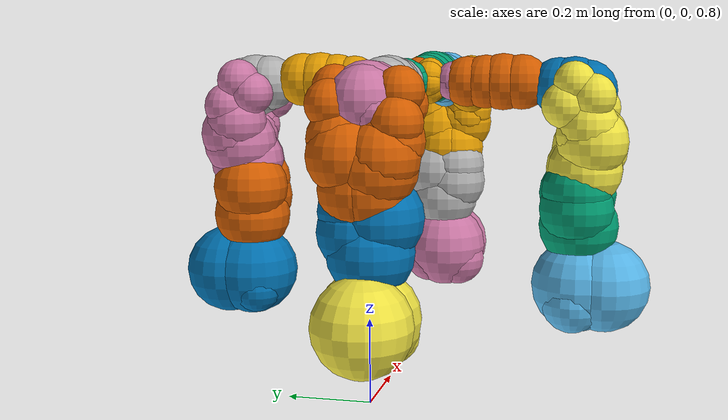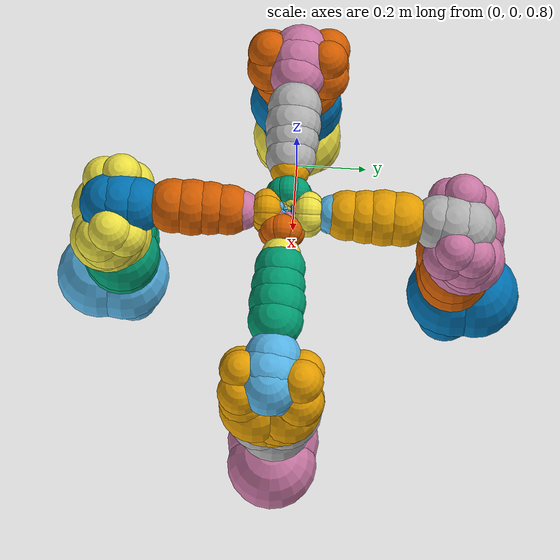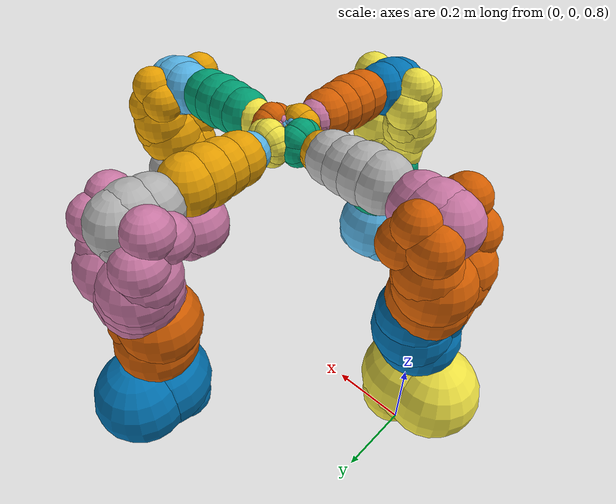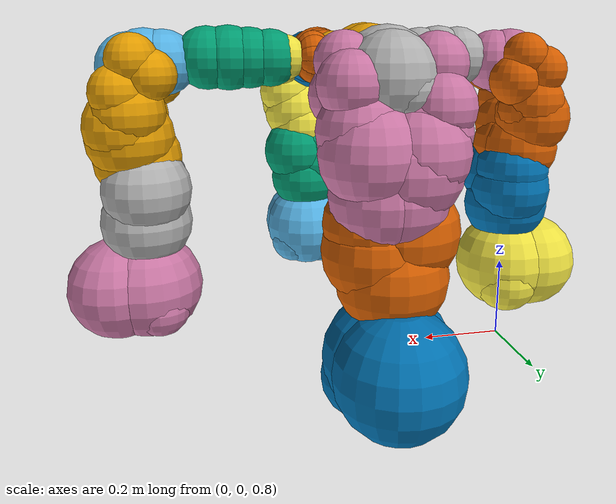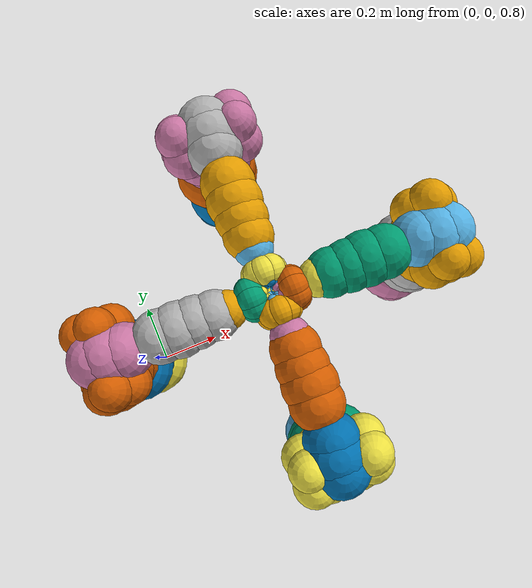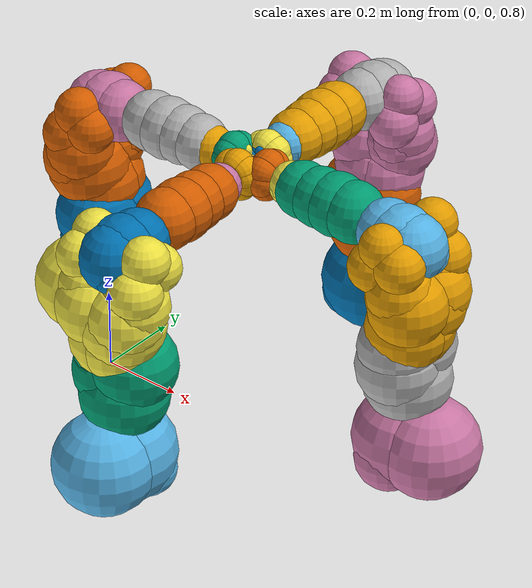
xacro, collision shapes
<?xml version="1.0"?>
<robot name="quad_gp4" xmlns:xacro="http://ros.org/wiki/xacro">

    <!-- add arms names prefixes -->
    <xacro:arg name="arm_id_1" default="left_arm" />
    <xacro:arg name="arm_id_2" default="right_arm" />
    <xacro:arg name="arm_id_3" default="top_arm" />
    <xacro:arg name="arm_id_4" default="bottom_arm" />

    <!-- load arm/hand models and utils (which adds the robot inertia tags to be Gazebo-simulation ready) -->
    <xacro:include filename="$(find robot_digital_twin)/urdf/single_gp4_spherized.xacro" />

    <link name="world"/>

    <!-- box shaped table as base for the 2 GP4 -->
    <link name="base">
    </link>

    <joint name="base_to_world" type="fixed">
        <parent link="world"/>
        <child link="base"/>
        <origin xyz="0.0 0.0 0.0" rpy="0.0 0.0 0.0"/>
    </joint>

    <!-- left arm -->
    <xacro:Yaskawa_gp4 arm_id="$(arg arm_id_1)" connected_to="base" xyz="0 0 0.9246" rpy="0 0 0" />

    <!-- right arm -->
    <xacro:Yaskawa_gp4 arm_id="$(arg arm_id_2)" connected_to="base" xyz="0.88128092 -0.01226491 0.92460000" rpy="0 0 3.13792336" />

    <!-- top arm -->
    <xacro:Yaskawa_gp4 arm_id="$(arg arm_id_3)" connected_to="base" xyz="0.44 -0.44 0.9246" rpy="0 0 1.5708" />

    <!-- bottom arm -->
    <xacro:Yaskawa_gp4 arm_id="$(arg arm_id_4)" connected_to="base" xyz="0.44 0.44 0.9246" rpy="0 0 -1.5708" />

    <!-- load ros_control plugin -->
    <gazebo>
    <plugin name="gazebo_ros_control" filename="libgazebo_ros_control.so">
      <robotSimType>gazebo_ros_control/DefaultRobotHWSim</robotSimType>
      <legacyModeNS>true</legacyModeNS>
    </plugin>
  </gazebo>

</robot>

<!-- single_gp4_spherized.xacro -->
<robot
  name="Yaskawa_gp4" xmlns:xacro="http://ros.org/wiki/xacro">
  <xacro:macro name="Yaskawa_gp4" params="arm_id:='gp4' description_pkg:='robot_digital_twin' connected_to:='' xyz:='0 0 0' rpy:='0 0 0'">
  <xacro:include
    filename="$(find robot_digital_twin)/urdf/common_materials.xacro"/>

	<xacro:if value="${connected_to == ''}">
		<link name="world" />
		<xacro:property name="base_frame_name" value="world"/>
	</xacro:if>
	<xacro:unless value="${connected_to == ''}">
		<xacro:property name="base_frame_name" value="${connected_to}"/>
	</xacro:unless>

	<joint name="${arm_id}_to_${base_frame_name}" type="fixed">
		<parent link="${base_frame_name}"/>
		<child link="${arm_id}_base"/>
		<origin rpy="${rpy}" xyz="${xyz}"/>
		<dynamics damping="1.0"/>
	</joint>

    <!-- ROS-Industrial 'base' frame: base_link to gp4 World Coordinates transform -->
    <link name="${arm_id}_base" />
    <joint name="${arm_id}_base_link-base" type="fixed">
      <origin xyz="0 0 0.0" rpy="0 0 0"/>
      <parent link="${arm_id}_base"/>
      <child link="${arm_id}_base_link"/>
    </joint>

    <link name="${arm_id}_base_link">
		<inertial>
			<origin xyz="-0.073983 0.00022734 0.13031" rpy="0 0 0"></origin>
			<mass value="42.212"></mass>
			<inertia ixx="0.64296" ixy="0.0012624" ixz="-0.068804" iyy="1.2709" iyz="-0.0010754" izz="1.3497"></inertia>
		</inertial>
		<visual>
			<geometry>
          		<mesh filename="file://$(find robot_digital_twin)/meshes/gp4/base_link.stl"/>
			</geometry>
			<xacro:material_yaskawa_blue/>
		</visual>
		<collision>
			<geometry>
				<sphere radius="0.119671"></sphere>
			</geometry>
			<origin xyz="-0.07575601915097237 -0.0008230218069553376 0.07777994463970823" rpy="0 0 0"></origin>
		</collision>
		<collision>
			<geometry>
				<sphere radius="0.122461"></sphere>
			</geometry>
			<origin xyz="-0.009094019150972368 -0.0002290218069553375 0.07862394463970823" rpy="0 0 0"></origin>
		</collision>
		<collision>
			<geometry>
				<sphere radius="0.08014"></sphere>
			</geometry>
			<origin xyz="0.0027869808490276343 0.04260197819304466 0.04064294463970824" rpy="0 0 0"></origin>
		</collision>
		<collision>
			<geometry>
				<sphere radius="0.067458"></sphere>
			</geometry>
			<origin xyz="0.016629980849027635 -0.04618602180695534 0.03765994463970824" rpy="0 0 0"></origin>
		</collision>
	</link>
    <link name="${arm_id}_link_1">
		<inertial>
			<origin xyz="0.058962 0.24363 -0.018725" rpy="0 0 0"></origin>
			<mass value="37.265"></mass>
			<inertia ixx="0.95018" ixy="-0.14402" ixz="-0.064915" iyy="1.0578" iyz="0.037699" izz="1.094"></inertia>
		</inertial>
		<visual>
			<geometry>
				<mesh filename="file://$(find robot_digital_twin)/meshes/gp4/link_1.stl"/>
			</geometry>
			<xacro:material_yaskawa_blue/>
		</visual>
		<collision>
			<geometry>
				<sphere radius="0.103487"></sphere>
			</geometry>
			<origin xyz="-0.006680012403726577 -0.00405895157122612 -0.09518498797893524" rpy="0 0 0"></origin>
		</collision>
		<collision>
			<geometry>
				<sphere radius="0.096502"></sphere>
			</geometry>
			<origin xyz="-0.0022830124037265774 0.02624304842877388 -0.04820498797893524" rpy="0 0 0"></origin>
		</collision>
		<collision>
			<geometry>
				<sphere radius="0.100372"></sphere>
			</geometry>
			<origin xyz="-0.000928012403726578 -0.02788495157122612 -0.015095987978935244" rpy="0 0 0"></origin>
		</collision>
		<collision>
			<geometry>
				<sphere radius="0.090185"></sphere>
			</geometry>
			<origin xyz="-0.0018940124037265778 0.02974404842877388 -0.0007889879789352433" rpy="0 0 0"></origin>
		</collision>
	</link>
	<link name="${arm_id}_link_2">
		<inertial>
			<origin xyz="3.5083E-05 0.39008 0.15036" rpy="0 0 0"></origin>
			<mass value="22.632"></mass>
			<inertia ixx="1.7745" ixy="-0.0054743" ixz="0.00063015" iyy="0.15511" iyz="-0.09224" izz="1.826"></inertia>
		</inertial>
		<visual>
			<geometry>
				<mesh filename="file://$(find robot_digital_twin)/meshes/gp4/link_2.stl"/>
			</geometry>
			<xacro:material_yaskawa_blue/>
		</visual>
		<collision>
			<geometry>
				<sphere radius="0.09793"></sphere>
			</geometry>
			<origin xyz="-0.029720542814776534 -0.023862420774672922 0.10512294650002602" rpy="0 0 0"></origin>
		</collision>
		<collision>
			<geometry>
				<sphere radius="0.091307"></sphere>
			</geometry>
			<origin xyz="-0.03905554281477654 0.04388957922532708 0.129623946500026" rpy="0 0 0"></origin>
		</collision>
		<collision>
			<geometry>
				<sphere radius="0.061789"></sphere>
			</geometry>
			<origin xyz="-0.008863542814776536 0.05901957922532708 0.146398946500026" rpy="0 0 0"></origin>
		</collision>
		<collision>
			<geometry>
				<sphere radius="0.088217"></sphere>
			</geometry>
			<origin xyz="-0.03972254281477654 -0.03973442077467292 0.130174946500026" rpy="0 0 0"></origin>
		</collision>
		<collision>
			<geometry>
				<sphere radius="0.095999"></sphere>
			</geometry>
			<origin xyz="-0.020234542814776536 0.01789657922532708 0.05338594650002601" rpy="0 0 0"></origin>
		</collision>
		<collision>
			<geometry>
				<sphere radius="0.088623"></sphere>
			</geometry>
			<origin xyz="-0.0030135428147765354 0.02176557922532708 0.0008929465000260123" rpy="0 0 0"></origin>
		</collision>
		<collision>
			<geometry>
				<sphere radius="0.098809"></sphere>
			</geometry>
			<origin xyz="-0.018074542814776537 -0.0025994207746729203 0.05415094650002601" rpy="0 0 0"></origin>
		</collision>
		<collision>
			<geometry>
				<sphere radius="0.088389"></sphere>
			</geometry>
			<origin xyz="-0.003957542814776536 0.00091857922532708 -0.002976053499973999" rpy="0 0 0"></origin>
		</collision>
		<collision>
			<geometry>
				<sphere radius="0.079826"></sphere>
			</geometry>
			<origin xyz="-0.026058542814776535 -0.05560342077467292 0.162718946500026" rpy="0 0 0"></origin>
		</collision>
		<collision>
			<geometry>
				<sphere radius="0.062428"></sphere>
			</geometry>
			<origin xyz="-0.042745542814776535 -0.07226342077467293 0.205902946500026" rpy="0 0 0"></origin>
		</collision>
		<collision>
			<geometry>
				<sphere radius="0.055841"></sphere>
			</geometry>
			<origin xyz="0.026478457185223465 -0.07517142077467293 0.24198194650002602" rpy="0 0 0"></origin>
		</collision>
		<collision>
			<geometry>
				<sphere radius="0.056388"></sphere>
			</geometry>
			<origin xyz="-0.010712542814776536 -0.07403242077467292 0.274466946500026" rpy="0 0 0"></origin>
		</collision>
		<collision>
			<geometry>
				<sphere radius="0.076935"></sphere>
			</geometry>
			<origin xyz="-0.028701542814776534 0.05970057922532708 0.167062946500026" rpy="0 0 0"></origin>
		</collision>
		<collision>
			<geometry>
				<sphere radius="0.058835"></sphere>
			</geometry>
			<origin xyz="0.029858457185223466 0.07896457922532707 0.222125946500026" rpy="0 0 0"></origin>
		</collision>
		<collision>
			<geometry>
				<sphere radius="0.057534"></sphere>
			</geometry>
			<origin xyz="-0.039346542814776536 0.07962557922532709 0.244992946500026" rpy="0 0 0"></origin>
		</collision>
		<collision>
			<geometry>
				<sphere radius="0.05257"></sphere>
			</geometry>
			<origin xyz="0.0063094571852234625 0.08002757922532708 0.279773946500026" rpy="0 0 0"></origin>
		</collision>
	</link>
	<link name="${arm_id}_link_3">
		<inertial>
			<origin xyz="0.086423 0.14427 -0.035793" rpy="0 0 0"></origin>
			<mass value="28.467"></mass>
			<inertia ixx="0.65771" ixy="-0.13627" ixz="-0.026219" iyy="0.52683" iyz="0.051956" izz="0.69722"></inertia>
		</inertial>
		<visual>
			<geometry>
				<mesh filename="file://$(find robot_digital_twin)/meshes/gp4/link_3.stl"/>
			</geometry>
			<xacro:material_yaskawa_blue/>
		</visual>
		<collision>
			<geometry>
				<sphere radius="0.078334"></sphere>
			</geometry>
			<origin xyz="-0.019412976109266282 0.00740209885430336 -0.004424969627380371" rpy="0 0 0"></origin>
		</collision>
		<collision>
			<geometry>
				<sphere radius="0.082448"></sphere>
			</geometry>
			<origin xyz="0.01119302389073372 0.00649809885430336 -0.000790969627380371" rpy="0 0 0"></origin>
		</collision>
		<collision>
			<geometry>
				<sphere radius="0.072948"></sphere>
			</geometry>
			<origin xyz="0.05006602389073372 0.0017370988543033601 0.006009030372619629" rpy="0 0 0"></origin>
		</collision>
		<collision>
			<geometry>
				<sphere radius="0.052807"></sphere>
			</geometry>
			<origin xyz="-0.03822397610926628 -0.014118901145696638 -0.02360596962738037" rpy="0 0 0"></origin>
		</collision>
	</link>
	<link name="${arm_id}_link_4">
		<inertial>
			<origin xyz="0.37337 0.00033491 0.012656" rpy="0 0 0"></origin>
			<mass value="7.629"></mass>
			<inertia ixx="0.018151" ixy="-0.00033527" ixz="-0.031589" iyy="0.48072" iyz="3.3917E-05" izz="0.47647"></inertia>
		</inertial>
		<visual>
			<geometry>
				<mesh filename="file://$(find robot_digital_twin)/meshes/gp4/link_4.stl"/>
			</geometry>
			<xacro:material_yaskawa_blue/>
		</visual>
		<collision>
			<geometry>
				<sphere radius="0.070971"></sphere>
			</geometry>
			<origin xyz="-0.14405002021551133 0.0012611188665628433 0.00023096638298034664" rpy="0 0 0"></origin>
		</collision>
		<collision>
			<geometry>
				<sphere radius="0.073196"></sphere>
			</geometry>
			<origin xyz="-0.09581802021551132 -9.088113343715663e-05 0.0001579663829803467" rpy="0 0 0"></origin>
		</collision>
		<collision>
			<geometry>
				<sphere radius="0.069293"></sphere>
			</geometry>
			<origin xyz="-0.05042802021551132 0.0003211188665628433 -0.00012603361701965326" rpy="0 0 0"></origin>
		</collision>
		<collision>
			<geometry>
				<sphere radius="0.065365"></sphere>
			</geometry>
			<origin xyz="-0.0019150202155113205 -0.0009398811334371568 -0.0003610336170196532" rpy="0 0 0"></origin>
		</collision>
	</link>
	<link name="${arm_id}_link_5">
		<inertial>
			<origin xyz="0.062818 3.3289E-05 0.0048991" rpy="0 0 0"></origin>
			<mass value="2.5794"></mass>
			<inertia ixx="0.015161" ixy="-2.4835E-06" ixz="0.0016647" iyy="0.021382" iyz="-2.248E-06" izz="0.013473"></inertia>
		</inertial>
		<visual>
			<geometry>
				<mesh filename="file://$(find robot_digital_twin)/meshes/gp4/link_5.stl"/>
			</geometry>
			<xacro:material_yaskawa_blue/>
		</visual>
		<collision>
			<geometry>
				<sphere radius="0.051872"></sphere>
			</geometry>
			<origin xyz="-0.0026619937367439277 -0.003007821430444717 -0.0035049637603759764" rpy="0 0 0"></origin>
		</collision>
		<collision>
			<geometry>
				<sphere radius="0.051585"></sphere>
			</geometry>
			<origin xyz="0.030800006263256074 -0.0011878214304447176 0.0010180362396240235" rpy="0 0 0"></origin>
		</collision>
		<collision>
			<geometry>
				<sphere radius="0.048512"></sphere>
			</geometry>
			<origin xyz="-0.001991993736743927 -0.0042458214304447175 0.005634036239624023" rpy="0 0 0"></origin>
		</collision>
		<collision>
			<geometry>
				<sphere radius="0.044263"></sphere>
			</geometry>
			<origin xyz="0.036475006263256074 0.004061178569555283 -0.004412963760375976" rpy="0 0 0"></origin>
		</collision>
	</link>
	<link name="${arm_id}_link_6">
		<inertial>
			<origin xyz="0.00015982 -0.00063018 -0.008266" rpy="0 0 0"></origin>
			<mass value="0.10811"></mass>
			<inertia ixx="9.0129E-05" ixy="-1.0891E-08" ixz="9.1598E-09" iyy="9.2026E-05" iyz="-2.749E-07" izz="0.00017818"></inertia>
		</inertial>
		<visual>
			<geometry>
				<mesh filename="file://$(find robot_digital_twin)/meshes/gp4/link_6.stl"/>
			</geometry>
			<xacro:material_yaskawa_silver/>
		</visual>
		<collision>
			<geometry>
				<sphere radius="0.022972"></sphere>
			</geometry>
			<origin xyz="0.06725001335144043 -5.284726309776306e-05 -0.012774910593032837" rpy="0 0 0"></origin>
		</collision>
		<collision>
			<geometry>
				<sphere radius="0.023049"></sphere>
			</geometry>
			<origin xyz="0.06725001335144043 -0.010521847263097763 0.0068190894069671635" rpy="0 0 0"></origin>
		</collision>
		<collision>
			<geometry>
				<sphere radius="0.022052"></sphere>
			</geometry>
			<origin xyz="0.06726901335144043 0.011999152736902236 0.006232089406967163" rpy="0 0 0"></origin>
		</collision>
	</link>
	<link name="${arm_id}_fts">
		<collision>
			<geometry>
				<sphere radius="0.03819"></sphere>
			</geometry>
			<origin xyz="-0.022743 -0.000449 -2e-06" rpy="0 0 0"></origin>
		</collision>
		<collision>
			<geometry>
				<sphere radius="0.036558"></sphere>
			</geometry>
			<origin xyz="-0.0163 -0.016332 -0.000116" rpy="0 0 0"></origin>
		</collision>
		<collision>
			<geometry>
				<sphere radius="0.038079"></sphere>
			</geometry>
			<origin xyz="-0.015427 0.017237 1e-06" rpy="0 0 0"></origin>
		</collision>
		<collision>
			<geometry>
				<sphere radius="0.03839"></sphere>
			</geometry>
			<origin xyz="0.004451 0.022377 -1e-06" rpy="0 0 0"></origin>
		</collision>
		<collision>
			<geometry>
				<sphere radius="0.038504"></sphere>
			</geometry>
			<origin xyz="0.020547 0.009518 1.2e-05" rpy="0 0 0"></origin>
		</collision>
		<collision>
			<geometry>
				<sphere radius="0.038294"></sphere>
			</geometry>
			<origin xyz="0.020396 -0.01004 -0.000127" rpy="0 0 0"></origin>
		</collision>
		<collision>
			<geometry>
				<sphere radius="0.035668"></sphere>
			</geometry>
			<origin xyz="0.009117 -0.022059 0.000157" rpy="0 0 0"></origin>
		</collision>
		<collision>
			<geometry>
				<sphere radius="0.036645"></sphere>
			</geometry>
			<origin xyz="-0.003951 -0.022416 -1e-06" rpy="0 0 0"></origin>
		</collision>
		<visual>
			<origin xyz="0 0 0" rpy="0 0 0"></origin>
			<geometry>
				<cylinder length="0.0505" radius="0.0472"></cylinder>
			</geometry>
			<xacro:material_yaskawa_silver />
		</visual>
		<inertial>
			<mass value="1e-5"></mass>
			<origin xyz="0 0 0" rpy="0 0 0"></origin>
			<inertia ixx="1e-6" ixy="0" ixz="0" iyy="1e-6" iyz="0" izz="1e-6"></inertia>
		</inertial>
	</link>
	<link name="${arm_id}_link_tool">
		<inertial>
			<origin xyz="0 0 0" rpy="0 0 0"></origin>
			<mass value="0.10811"></mass>
			<inertia ixx="9.0129E-05" ixy="-1.0891E-08" ixz="9.1598E-09" iyy="9.2026E-05" iyz="-2.749E-07" izz="0.00017818"></inertia>
		</inertial>
		<visual>
			<origin xyz="0 0 0" rpy="0 0 0"></origin>
			<geometry>
				<mesh filename="file://$(find robot_digital_twin)/meshes/eoat/tool_with_cam_gen35.stl"></mesh>
			</geometry>
			<xacro:material_yaskawa_silver />
		</visual>
		<collision>
			<geometry>
				<sphere radius="0.007566"></sphere>
			</geometry>
			<origin xyz="-0.00812526059785581 0.020722512432185928 0.041226901189082864" rpy="0 0 0"></origin>
		</collision>
		<collision>
			<geometry>
				<sphere radius="0.011"></sphere>
			</geometry>
			<origin xyz="-0.0004 -0.000456487567814073 0.0647" rpy="0 0 0"></origin>
		</collision>
		<collision>
			<geometry>
				<sphere radius="0.003"></sphere>
			</geometry>
			<origin xyz="-0.0075 -0.0065 0.073" rpy="0 0 0"></origin>
		</collision>
		<collision>
			<geometry>
				<sphere radius="0.003"></sphere>
			</geometry>
			<origin xyz="-0.0075 0.0065 0.073" rpy="0 0 0"></origin>
		</collision>
		<collision>
			<geometry>
				<sphere radius="0.016"></sphere>
			</geometry>
			<origin xyz="-0.0025242605978558113 0.00015551243218592706 0.045856901189082866" rpy="0 0 0"></origin>
		</collision>
		<collision>
			<geometry>
				<sphere radius="0.023908"></sphere>
			</geometry>
			<origin xyz="-0.004176260597855811 1.8512432185927062e-05 0.03335690118908286" rpy="0 0 0"></origin>
		</collision>
		<collision>
			<geometry>
				<sphere radius="0.02149"></sphere>
			</geometry>
			<origin xyz="-0.0032202605978558113 0.006482512432185927 0.02346890118908286" rpy="0 0 0"></origin>
		</collision>
		<collision>
			<geometry>
				<sphere radius="0.019783"></sphere>
			</geometry>
			<origin xyz="0.009670739402144189 0.015605512432185928 0.007847901189082861" rpy="0 0 0"></origin>
		</collision>
		<collision>
			<geometry>
				<sphere radius="0.021634"></sphere>
			</geometry>
			<origin xyz="-0.007474260597855811 0.015229512432185927 0.008738901189082864" rpy="0 0 0"></origin>
		</collision>
		<collision>
			<geometry>
				<sphere radius="0.012498"></sphere>
			</geometry>
			<origin xyz="0.02037173940214419 0.007351512432185927 0.004500901189082862" rpy="0 0 0"></origin>
		</collision>
		<collision>
			<geometry>
				<sphere radius="0.017566"></sphere>
			</geometry>
			<origin xyz="0.012428739402144189 -0.013928487567814073 0.007362901189082862" rpy="0 0 0"></origin>
		</collision>
		<collision>
			<geometry>
				<sphere radius="0.019796"></sphere>
			</geometry>
			<origin xyz="0.000674739402144189 -0.006403487567814073 0.020150901189082863" rpy="0 0 0"></origin>
		</collision>
		<collision>
			<geometry>
				<sphere radius="0.01449"></sphere>
			</geometry>
			<origin xyz="0.00021573940214418894 -0.023956487567814072 0.004920901189082866" rpy="0 0 0"></origin>
		</collision>
		<collision>
			<geometry>
				<sphere radius="0.013901"></sphere>
			</geometry>
			<origin xyz="0.02613373940214419 -0.004951487567814073 0.003919901189082864" rpy="0 0 0"></origin>
		</collision>
		<collision>
			<geometry>
				<sphere radius="0.027207"></sphere>
			</geometry>
			<origin xyz="-0.00999526059785581 0.001222512432185927 0.014604901189082864" rpy="0 0 0"></origin>
		</collision>
		<collision>
			<geometry>
				<sphere radius="0.017205"></sphere>
			</geometry>
			<origin xyz="-0.01505326059785581 0.009620512432185927 0.0078119011890828635" rpy="0 0 0"></origin>
		</collision>
		<collision>
			<geometry>
				<sphere radius="0.017734"></sphere>
			</geometry>
			<origin xyz="-0.016864260597855812 -0.011968487567814073 0.006466901189082861" rpy="0 0 0"></origin>
		</collision>
		<collision>
			<geometry>
				<sphere radius="0.018122"></sphere>
			</geometry>
			<origin xyz="-0.005438260597855811 -0.015421487567814075 0.007465901189082861" rpy="0 0 0"></origin>
		</collision>
	</link>
	<link name="${arm_id}_flange"></link>

	<joint name="${arm_id}_joint_1" type="revolute">
		<parent link="${arm_id}_base_link"></parent>
		<child link="${arm_id}_link_1"></child>
		<origin xyz="0 0 0.330" rpy="0 0 0"></origin>
		<axis xyz="0 0 1"></axis>
		<limit effort="200" lower="-2.9670597283903604" upper="2.9670597283903604" velocity="2"></limit>
	</joint>
	<joint name="${arm_id}_joint_2" type="revolute">
		<parent link="${arm_id}_link_1"></parent>
		<child link="${arm_id}_link_2"></child>
		<origin xyz="0 0 0" rpy="0 0 0"></origin>
		<axis xyz="0 1 0"></axis>
		<limit effort="200" lower="-1.9198621771937625" upper="2.2689280275926285" velocity="2"></limit>
	</joint>
	<joint name="${arm_id}_joint_3" type="revolute">
		<parent link="${arm_id}_link_2"></parent>
		<child link="${arm_id}_link_3"></child>
		<origin xyz="0 0 0.260" rpy="0 0 0"></origin>
		<axis xyz="0 -1 0"></axis>
		<limit effort="200" lower="-0.99" upper="3.30" velocity="2"></limit>
	</joint>
	<joint name="${arm_id}_joint_4" type="revolute">
		<parent link="${arm_id}_link_3"></parent>
		<child link="${arm_id}_link_4"></child>
		<origin xyz="0.290 0 0.015" rpy="0 0 0"></origin>
		<axis xyz="-1 0 0"></axis>
		<limit effort="200" lower="-3.490658503988659" upper="3.490658503988659" velocity="2"></limit>
	</joint>
	<joint name="${arm_id}_joint_5" type="revolute">
		<parent link="${arm_id}_link_4"></parent>
		<child link="${arm_id}_link_5"></child>
		<origin xyz="0 0 0" rpy="0 0 0"></origin>
		<axis xyz="0 -1 0"></axis>
		<limit effort="200" lower="-1.98968" upper="1.98968" velocity="2"></limit>
	</joint>
	<joint name="${arm_id}_joint_6" type="revolute">
		<parent link="${arm_id}_link_5"></parent>
		<child link="${arm_id}_link_6"></child>
		<origin xyz="0 0 0" rpy="0 0 0"></origin>
		<axis xyz="-1 0 0"></axis>
		<limit effort="200" lower="-7.941248096574199" upper="7.941248096574199" velocity="2"></limit>
	</joint>
	<joint name="${arm_id}_joint_6_t-flange" type="fixed">
		<origin xyz="0.072 0 0" rpy="0 0 0"></origin>
		<parent link="${arm_id}_link_6"></parent>
		<child link="${arm_id}_flange"></child>
	</joint>
	<joint name="${arm_id}_link_6_fts" type="fixed">
		<origin rpy="0 1.5707963267948966 0" xyz="0.02525 0 0"></origin>
		<parent link="${arm_id}_flange"></parent>
		<child link="${arm_id}_fts"></child>
	</joint>
	<joint name="${arm_id}_fts_tool" type="revolute">
		<origin rpy="0 0 3.141592653589793" xyz="0 0 0.02525"></origin>
		<parent link="${arm_id}_fts"></parent>
		<child link="${arm_id}_link_tool"></child>
		<limit velocity="0" effort="0" lower="0" upper="0" />
	</joint>
	</xacro:macro>

</robot>
